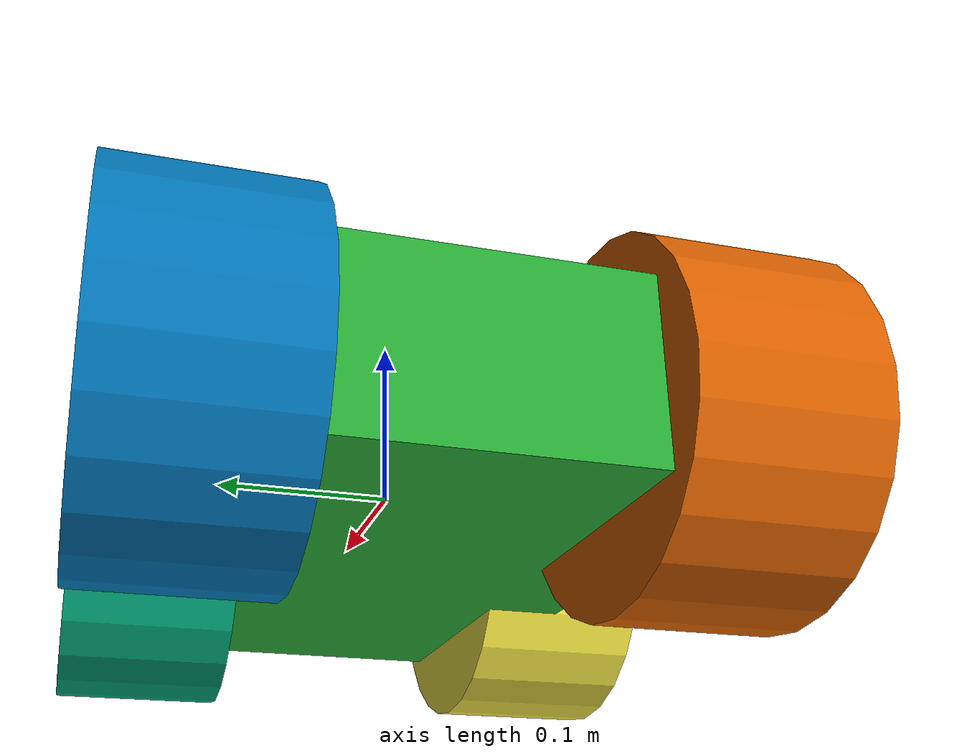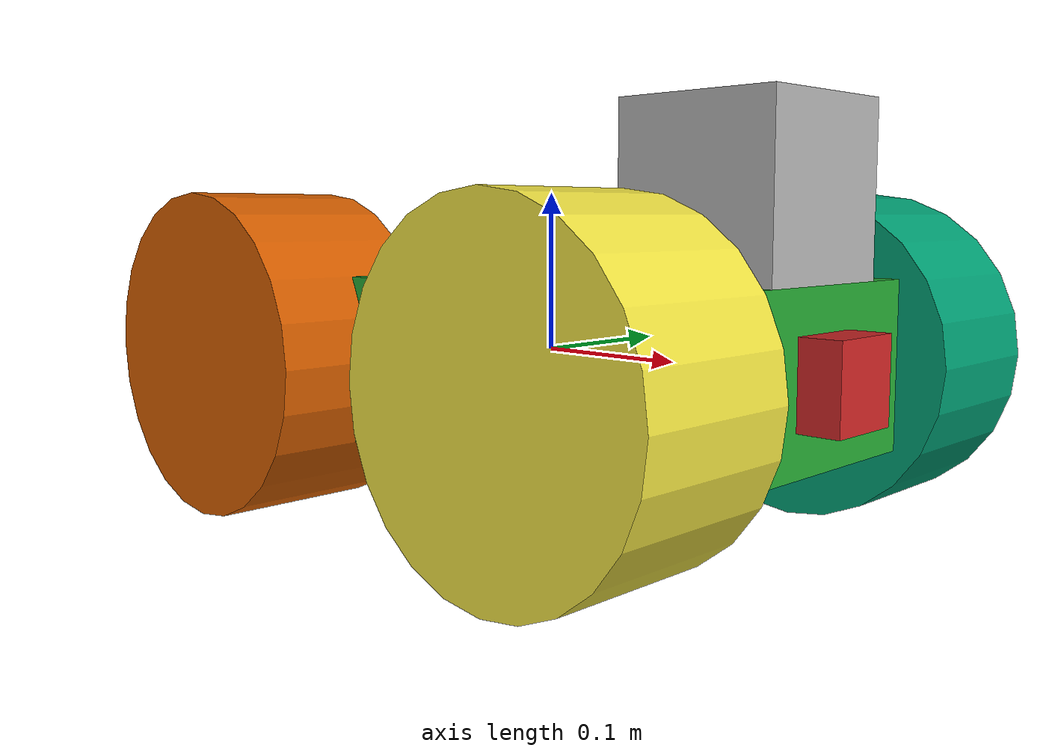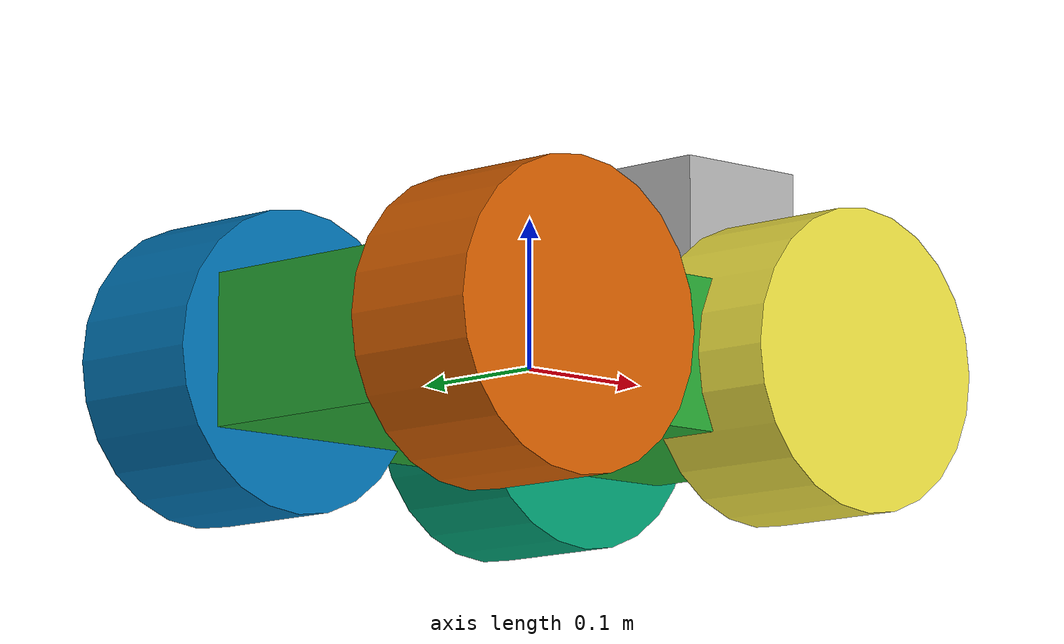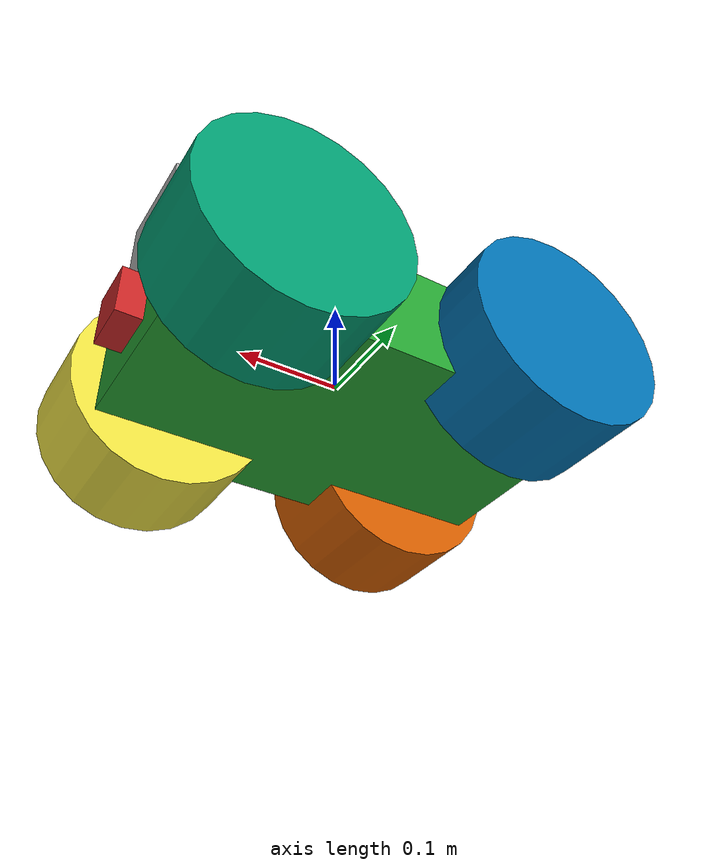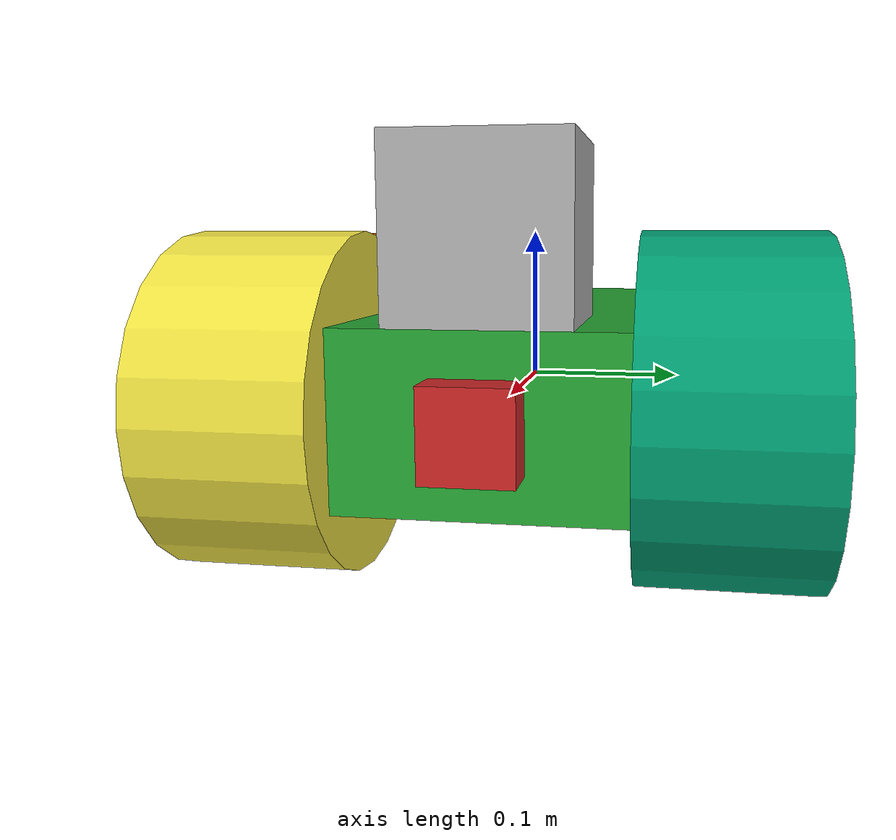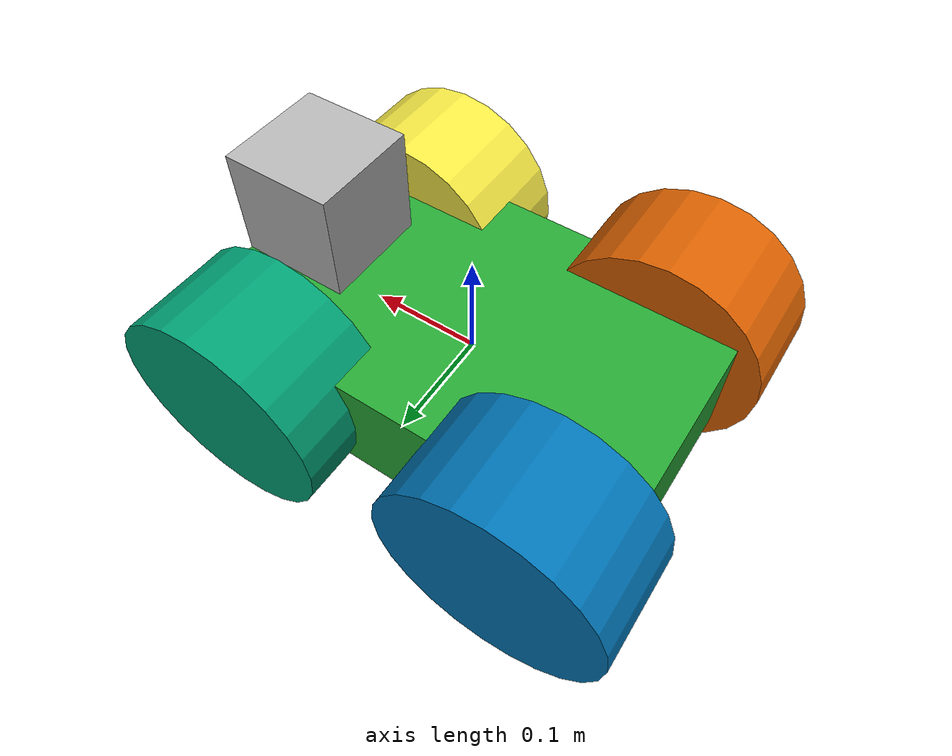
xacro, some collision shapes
<robot name="my_robot" xmlns:xacro="http://www.ros.org/wiki/xacro">
	<xacro:include filename="$(find my_robot)/urdf/my_robot.gazebo" />
  <link name="robot_footprint"></link>
  <gazebo reference = "chassis">
    <material>Gazebo/Green</material>
  </gazebo>

  <gazebo reference = "camera">
    <material>Gazebo/Red</material>
  </gazebo>

  <joint name="robot_footprint_joint" type="fixed">
    <origin xyz="0 0 0" rpy="0 0 0" />
    <parent link="robot_footprint"/>
    <child link="chassis" />
  </joint>

  <link name='chassis'>
    <pose>0 0 0 0 0 0</pose>
    <inertial>
      <mass value="5"/>
      <origin xyz="0.0 0 0" rpy=" 0 0 0"/>
      <inertia
          ixx="0.1" ixy="0" ixz="0"
          iyy="0.1" iyz="0"
          izz="0.1"
      />
    </inertial>
    <collision name='collision'>
      <origin xyz="0 0 0" rpy=" 0 0 0"/>
      <geometry>
        <box size=".4 .25 .1"/>
      </geometry>
    </collision>
    <visual name='chassis'>
      <origin xyz="0 0 0" rpy=" 0 0 0"/>
      <geometry>
        <box size=".4 .25 .1"/>
      </geometry>
    </visual>
  </link>

  <joint type="continuous" name="left_front_wheel">
    <origin xyz="0.13 0.13 0" rpy="0 0 0"/>
    <child link="left_front_wheel"/>
    <parent link="chassis"/>
    <axis xyz="0 1 0" rpy="0 0 0"/>
    <limit effort="10000" velocity="1000"/>
    <dynamics damping="1.0" friction="1.0"/>
  </joint>

  <link name='left_front_wheel'>
    <pose>0 0 0 0 0 0</pose>
    <inertial>
      <mass value="0.5"/>
      <origin xyz="0.0 0 0" rpy=" 1.5707 0 0"/>
      <inertia
          ixx="0.1" ixy="0" ixz="0"
          iyy="0.1" iyz="0"
          izz="0.1"
      />
    </inertial>
    <visual name='visual'>
       <origin xyz="0 0 0" rpy=" 1.5707 0 0"/>
        <geometry>
          <cylinder radius="0.1" length="0.1" />
        </geometry>
    </visual>
    <collision name='collision'>
       <origin xyz="0 0 0" rpy=" 1.5707 0 0"/>
        <geometry>
          <cylinder radius="0.1" length="0.1" />
        </geometry>
    </collision>
  </link>

  <joint type="continuous" name="right_front_wheel">
    <origin xyz="0.13 -0.13 0" rpy="0 0 0"/>
    <child link="right_front_wheel"/>
    <parent link="chassis"/>
    <axis xyz="0 1 0" rpy="0 0 0"/>
    <limit effort="10000" velocity="1000"/>
    <dynamics damping="1.0" friction="1.0"/>
  </joint>

  <link name='right_front_wheel'>
    <pose>0 0 0 0 0 0</pose>
    <inertial>
      <mass value="0.5"/>
      <origin xyz="0 0 0" rpy=" 1.5707 0 0"/>
      <inertia
          ixx="0.1" ixy="0" ixz="0"
          iyy="0.1" iyz="0"
          izz="0.1"
      />
    </inertial>
    <visual name='visual'>
       <origin xyz="0 0 0" rpy=" 1.5707 0 0"/>
        <geometry>
          <cylinder radius="0.1" length="0.1" />
        </geometry>
      </visual>
    <collision name='collision'>
       <origin xyz="0 0 0" rpy=" 1.5707 0 0"/>
        <geometry>
          <cylinder radius="0.1" length="0.1" />
        </geometry>
    </collision>
  </link>

  <joint type="continuous" name="left_back_wheel">
    <origin xyz="-0.13 0.13 0" rpy="0 0 0"/>
    <child link="left_back_wheel"/>
    <parent link="chassis"/>
    <axis xyz="0 1 0" rpy="0 0 0"/>
    <limit effort="10000" velocity="1000"/>
    <dynamics damping="1.0" friction="1.0"/>
  </joint>

  <link name='left_back_wheel'>
    <pose>0 0 0 0 0 0</pose>
    <inertial>
      <mass value="0.5"/>
      <origin xyz="0.0 0 0" rpy=" 1.5707 0 0"/>
      <inertia
          ixx="0.1" ixy="0" ixz="0"
          iyy="0.1" iyz="0"
          izz="0.1"
      />
    </inertial>
    <visual name='visual'>
       <origin xyz="0 0 0" rpy=" 1.5707 0 0"/>
        <geometry>
          <cylinder radius="0.1" length="0.1" />
        </geometry>
      </visual>
    <collision name='collision'>
       <origin xyz="0 0 0" rpy=" 1.5707 0 0"/>
        <geometry>
          <cylinder radius="0.1" length="0.1" />
        </geometry>
    </collision>
  </link>

  <joint type="continuous" name="right_back_wheel">
    <origin xyz="-0.13 -0.13 0" rpy="0 0 0"/>
    <child link="right_back_wheel"/>
    <parent link="chassis"/>
    <axis xyz="0 1 0" rpy="0 0 0"/>
    <limit effort="10000" velocity="1000"/>
    <dynamics damping="1.0" friction="1.0"/>
  </joint>

  <link name='right_back_wheel'>
    <pose>0 0 0 0 0 0</pose>
    <inertial>
      <mass value="0.5"/>
      <origin xyz="0.0 0 0" rpy=" 1.5707 0 0"/>
      <inertia
          ixx="0.1" ixy="0" ixz="0"
          iyy="0.1" iyz="0"
          izz="0.1"
      />
    </inertial>
    <visual name='visual'>
       <origin xyz="0 0 0" rpy=" 1.5707 0 0"/>
        <geometry>
          <cylinder radius="0.1" length="0.1" />
        </geometry>
      </visual>
    <collision name='collision'>
       <origin xyz="0 0 0" rpy=" 1.5707 0 0"/>
        <geometry>
          <cylinder radius="0.1" length="0.1" />
        </geometry>
    </collision>
  </link>

  <joint name="camera_joint" type="fixed">
    <origin xyz="0.2 0 0" rpy="0 0 0" />
    <parent link="chassis"/>
    <child link="camera" />
  </joint>
	<link name='camera'>
		<pose> 0 0 0 0 0 0</pose>
		<inertial>
      <mass value="0.1"/>
      <origin xyz="0.0 0 0" rpy=" 0 0 0"/>
      <inertia
          ixx="1e-6" ixy="0" ixz="0"
          iyy="1e-6" iyz="0"
          izz="1e-6"
      />
    </inertial>
    <collision name='camera_collision'>
      <origin xyz="0 0 0" rpy=" 0 0 0"/>
      <geometry>
        <box size=".05 .05 .05"/>
      </geometry>
    </collision>
    <visual name='camera_visual'>
      <origin xyz="0 0 0" rpy=" 0 0 0"/>
      <geometry>
        <box size=".05 .05 .05"/>
      </geometry>
    </visual>
		<box_inertia m="0.1" x="0.05" y="0.05" z="0.05"/>
	</link>

  <joint name="hokuyo_joint" type="fixed">
    <origin xyz="0.15 0 0.1" rpy="0 0 0" />
    <parent link="chassis"/>
    <child link="hokuyo" />
  </joint>
	<link name='hokuyo'>
		<pose> 0 0 0 0 0 0</pose>
		<inertial>
      <mass value="1e-5"/>
      <origin xyz="0.0 0 0" rpy=" 0 0 0"/>
      <inertia
          ixx="1e-6" ixy="0" ixz="0"
          iyy="1e-6" iyz="0"
          izz="1e-6"
      />
    </inertial>
    <collision name='hokuyo_collision'>
      <origin xyz="0 0 0" rpy=" 0 0 0"/>
      <geometry>
        <box size=".1 .1 .1"/>
      </geometry>
    </collision>
    <visual name='hokuyo_visual'>
			<origin xyz="0 0 0" rpy=" 0 0 0"/>
			<geometry>
				<mesh  filename = "package://my_robot/meshes/hokuyo.dae"/>
			</geometry>
		</visual>
	</link>

</robot>
